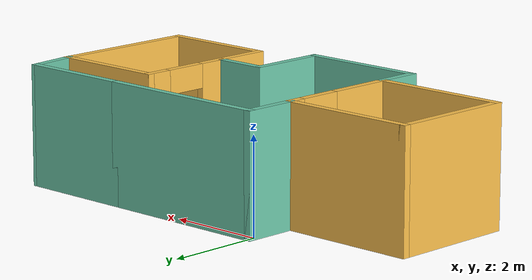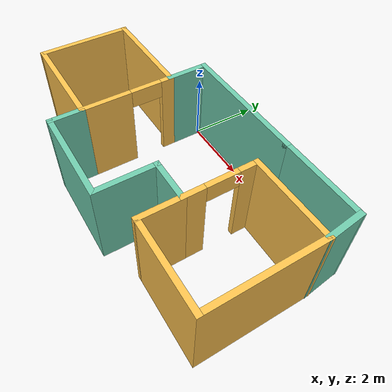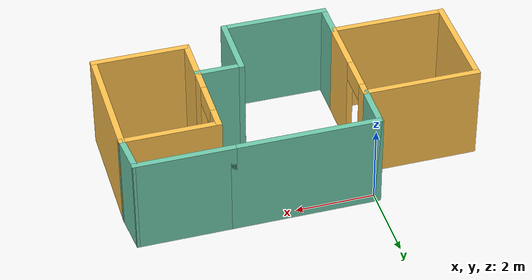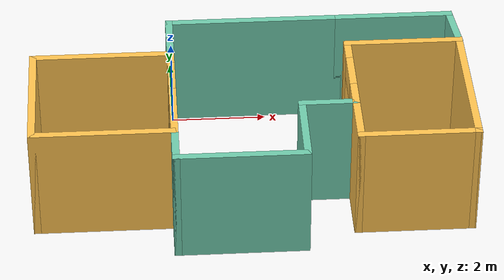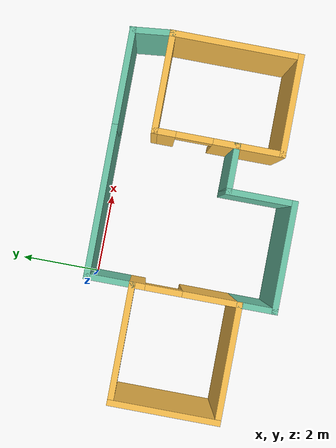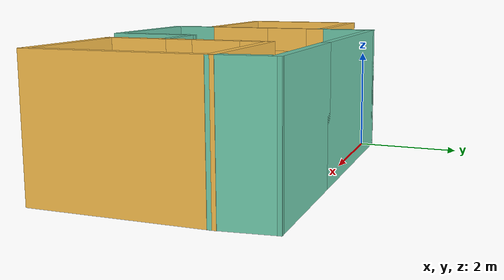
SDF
<?xml version='1.0'?>
<sdf version='1.7'>
  <model name='Building'>
    <pose>1.57372 -2.13128 0 0 -0 0</pose>
    <link name='Wall_0'>
      <collision name='Wall_0_Collision'>
        <geometry>
          <box>
            <size>2.75 0.15 2.5</size>
          </box>
        </geometry>
        <pose>0 0 1.25 0 -0 0</pose>
      </collision>
      <visual name='Wall_0_Visual'>
        <pose>0 0 1.25 0 -0 0</pose>
        <geometry>
          <box>
            <size>2.75 0.15 2.5</size>
          </box>
        </geometry>
        <material>
          <script>
            <uri>file://media/materials/scripts/gazebo.material</uri>
            <name>Gazebo/Grey</name>
          </script>
          <ambient>1 0.764706 0.305882 1</ambient>
        </material>
        <meta>
          <layer>0</layer>
        </meta>
      </visual>
      <pose>-4.45372 -0.12872 0 0 -0 -1.5708</pose>
    </link>
    <link name='Wall_1'>
      <collision name='Wall_1_Collision'>
        <geometry>
          <box>
            <size>3 0.15 2.5</size>
          </box>
        </geometry>
        <pose>0 0 1.25 0 -0 0</pose>
      </collision>
      <visual name='Wall_1_Visual'>
        <pose>0 0 1.25 0 -0 0</pose>
        <geometry>
          <box>
            <size>3 0.15 2.5</size>
          </box>
        </geometry>
        <material>
          <script>
            <uri>file://media/materials/scripts/gazebo.material</uri>
            <name>Gazebo/Grey</name>
          </script>
          <ambient>1 0.764706 0.305882 1</ambient>
        </material>
        <meta>
          <layer>0</layer>
        </meta>
      </visual>
      <pose>-3.02872 -1.42872 0 0 -0 0</pose>
    </link>
    <link name='Wall_10'>
      <pose>2.09628 0.32128 0 0 -0 -1.5708</pose>
      <visual name='Wall_10_Visual_0'>
        <pose>-0.780597 0 1.25 0 -0 0</pose>
        <geometry>
          <box>
            <size>0.588806 0.15 2.5</size>
          </box>
        </geometry>
        <material>
          <script>
            <uri>file://media/materials/scripts/gazebo.material</uri>
            <name>Gazebo/Grey</name>
          </script>
          <ambient>1 0.764706 0.305882 1</ambient>
        </material>
        <meta>
          <layer>0</layer>
        </meta>
      </visual>
      <collision name='Wall_10_Collision_0'>
        <geometry>
          <box>
            <size>0.588806 0.15 2.5</size>
          </box>
        </geometry>
        <pose>-0.780597 0 1.25 0 -0 0</pose>
      </collision>
      <visual name='Wall_10_Visual_1'>
        <pose>0.744403 0 1.25 0 -0 0</pose>
        <geometry>
          <box>
            <size>0.661194 0.15 2.5</size>
          </box>
        </geometry>
        <material>
          <script>
            <uri>file://media/materials/scripts/gazebo.material</uri>
            <name>Gazebo/Grey</name>
          </script>
          <ambient>1 0.764706 0.305882 1</ambient>
        </material>
        <meta>
          <layer>0</layer>
        </meta>
      </visual>
      <collision name='Wall_10_Collision_1'>
        <geometry>
          <box>
            <size>0.661194 0.15 2.5</size>
          </box>
        </geometry>
        <pose>0.744403 0 1.25 0 -0 0</pose>
      </collision>
      <visual name='Wall_10_Visual_2'>
        <pose>-0.036194 0 2.25 0 -0 0</pose>
        <geometry>
          <box>
            <size>0.9 0.15 0.5</size>
          </box>
        </geometry>
        <material>
          <script>
            <uri>file://media/materials/scripts/gazebo.material</uri>
            <name>Gazebo/Grey</name>
          </script>
          <ambient>1 0.764706 0.305882 1</ambient>
        </material>
        <meta>
          <layer>0</layer>
        </meta>
      </visual>
      <collision name='Wall_10_Collision_2'>
        <geometry>
          <box>
            <size>0.9 0.15 0.5</size>
          </box>
        </geometry>
        <pose>-0.036194 0 2.25 0 -0 0</pose>
      </collision>
    </link>
    <link name='Wall_12'>
      <collision name='Wall_12_Collision'>
        <geometry>
          <box>
            <size>3 0.15 2.5</size>
          </box>
        </geometry>
        <pose>0 0 1.25 0 -0 0</pose>
      </collision>
      <visual name='Wall_12_Visual'>
        <pose>0 0 1.25 0 -0 0</pose>
        <geometry>
          <box>
            <size>3 0.15 2.5</size>
          </box>
        </geometry>
        <material>
          <script>
            <uri>file://media/materials/scripts/gazebo.material</uri>
            <name>Gazebo/Grey</name>
          </script>
          <ambient>1 0.764706 0.305882 1</ambient>
        </material>
        <meta>
          <layer>0</layer>
        </meta>
      </visual>
      <pose>-3.02872 1.17128 0 0 -0 0</pose>
    </link>
    <link name='Wall_13'>
      <pose>-1.60372 -0.12872 0 0 -0 -1.5708</pose>
      <visual name='Wall_13_Visual_0'>
        <pose>-1.18183 0 1.25 0 -0 0</pose>
        <geometry>
          <box>
            <size>0.386336 0.15 2.5</size>
          </box>
        </geometry>
        <material>
          <script>
            <uri>file://media/materials/scripts/gazebo.material</uri>
            <name>Gazebo/Grey</name>
          </script>
          <ambient>1 0.764706 0.305882 1</ambient>
        </material>
        <meta>
          <layer>0</layer>
        </meta>
      </visual>
      <collision name='Wall_13_Collision_0'>
        <geometry>
          <box>
            <size>0.386336 0.15 2.5</size>
          </box>
        </geometry>
        <pose>-1.18183 0 1.25 0 -0 0</pose>
      </collision>
      <visual name='Wall_13_Visual_1'>
        <pose>0.643168 0 1.25 0 -0 0</pose>
        <geometry>
          <box>
            <size>1.46366 0.15 2.5</size>
          </box>
        </geometry>
        <material>
          <script>
            <uri>file://media/materials/scripts/gazebo.material</uri>
            <name>Gazebo/Grey</name>
          </script>
          <ambient>1 0.764706 0.305882 1</ambient>
        </material>
        <meta>
          <layer>0</layer>
        </meta>
      </visual>
      <collision name='Wall_13_Collision_1'>
        <geometry>
          <box>
            <size>1.46366 0.15 2.5</size>
          </box>
        </geometry>
        <pose>0.643168 0 1.25 0 -0 0</pose>
      </collision>
      <visual name='Wall_13_Visual_2'>
        <pose>-0.538664 0 2.25 0 -0 0</pose>
        <geometry>
          <box>
            <size>0.9 0.15 0.5</size>
          </box>
        </geometry>
        <material>
          <script>
            <uri>file://media/materials/scripts/gazebo.material</uri>
            <name>Gazebo/Grey</name>
          </script>
          <ambient>1 0.764706 0.305882 1</ambient>
        </material>
        <meta>
          <layer>0</layer>
        </meta>
      </visual>
      <collision name='Wall_13_Collision_2'>
        <geometry>
          <box>
            <size>0.9 0.15 0.5</size>
          </box>
        </geometry>
        <pose>-0.538664 0 2.25 0 -0 0</pose>
      </collision>
    </link>
    <link name='Wall_16'>
      <collision name='Wall_16_Collision'>
        <geometry>
          <box>
            <size>1.25 0.15 2.5</size>
          </box>
        </geometry>
        <pose>0 0 1.25 0 -0 0</pose>
      </collision>
      <visual name='Wall_16_Visual'>
        <pose>0 0 1.25 0 -0 0</pose>
        <geometry>
          <box>
            <size>1.25 0.15 2.5</size>
          </box>
        </geometry>
        <material>
          <script>
            <uri>file://media/materials/scripts/gazebo.material</uri>
            <name>Gazebo/Grey</name>
          </script>
          <ambient>0.435294 0.796078 0.67451 1</ambient>
        </material>
        <meta>
          <layer>0</layer>
        </meta>
      </visual>
      <pose>-1.60372 1.72128 0 0 -0 1.5708</pose>
    </link>
    <link name='Wall_17'>
      <collision name='Wall_17_Collision'>
        <geometry>
          <box>
            <size>3.75 0.15 2.5</size>
          </box>
        </geometry>
        <pose>0 0 1.25 0 -0 0</pose>
      </collision>
      <visual name='Wall_17_Visual'>
        <pose>0 0 1.25 0 -0 0</pose>
        <geometry>
          <box>
            <size>3.75 0.15 2.5</size>
          </box>
        </geometry>
        <material>
          <script>
            <uri>file://media/materials/scripts/gazebo.material</uri>
            <name>Gazebo/Grey</name>
          </script>
          <ambient>0.435294 0.796078 0.67451 1</ambient>
        </material>
        <meta>
          <layer>0</layer>
        </meta>
      </visual>
      <pose>0.196281 2.27128 0 0 -0 0</pose>
    </link>
    <link name='Wall_19'>
      <collision name='Wall_19_Collision'>
        <geometry>
          <box>
            <size>2.5 0.15 2.5</size>
          </box>
        </geometry>
        <pose>0 0 1.25 0 -0 0</pose>
      </collision>
      <visual name='Wall_19_Visual'>
        <pose>0 0 1.25 0 -0 0</pose>
        <geometry>
          <box>
            <size>2.5 0.15 2.5</size>
          </box>
        </geometry>
        <material>
          <script>
            <uri>file://media/materials/scripts/gazebo.material</uri>
            <name>Gazebo/Grey</name>
          </script>
          <ambient>0.435294 0.796078 0.67451 1</ambient>
        </material>
        <meta>
          <layer>0</layer>
        </meta>
      </visual>
      <pose>3.17128 2.27128 0 0 -0 0</pose>
    </link>
    <link name='Wall_2'>
      <collision name='Wall_2_Collision'>
        <geometry>
          <box>
            <size>1 0.15 2.5</size>
          </box>
        </geometry>
        <pose>0 0 1.25 0 -0 0</pose>
      </collision>
      <visual name='Wall_2_Visual'>
        <pose>0 0 1.25 0 -0 0</pose>
        <geometry>
          <box>
            <size>1 0.15 2.5</size>
          </box>
        </geometry>
        <material>
          <script>
            <uri>file://media/materials/scripts/gazebo.material</uri>
            <name>Gazebo/Grey</name>
          </script>
          <ambient>0.435294 0.796078 0.67451 1</ambient>
        </material>
        <meta>
          <layer>0</layer>
        </meta>
      </visual>
      <pose>-1.60372 -1.85372 0 0 -0 -1.5708</pose>
    </link>
    <link name='Wall_20'>
      <collision name='Wall_20_Collision'>
        <geometry>
          <box>
            <size>1.10525 0.15 2.5</size>
          </box>
        </geometry>
        <pose>0 0 1.25 0 -0 0</pose>
      </collision>
      <visual name='Wall_20_Visual'>
        <pose>0 0 1.25 0 -0 0</pose>
        <geometry>
          <box>
            <size>1.10525 0.15 2.5</size>
          </box>
        </geometry>
        <material>
          <script>
            <uri>file://media/materials/scripts/gazebo.material</uri>
            <name>Gazebo/Grey</name>
          </script>
          <ambient>0.435294 0.796078 0.67451 1</ambient>
        </material>
        <meta>
          <layer>0</layer>
        </meta>
      </visual>
      <pose>4.39628 1.79628 0 0 -0 -1.46592</pose>
    </link>
    <link name='Wall_3'>
      <collision name='Wall_3_Collision'>
        <geometry>
          <box>
            <size>2.75 0.15 2.5</size>
          </box>
        </geometry>
        <pose>0 0 1.25 0 -0 0</pose>
      </collision>
      <visual name='Wall_3_Visual'>
        <pose>0 0 1.25 0 -0 0</pose>
        <geometry>
          <box>
            <size>2.75 0.15 2.5</size>
          </box>
        </geometry>
        <material>
          <script>
            <uri>file://media/materials/scripts/gazebo.material</uri>
            <name>Gazebo/Grey</name>
          </script>
          <ambient>0.435294 0.796078 0.67451 1</ambient>
        </material>
        <meta>
          <layer>0</layer>
        </meta>
      </visual>
      <pose>-0.303719 -2.27872 0 0 -0 0</pose>
    </link>
    <link name='Wall_4'>
      <collision name='Wall_4_Collision'>
        <geometry>
          <box>
            <size>1.75 0.15 2.5</size>
          </box>
        </geometry>
        <pose>0 0 1.25 0 -0 0</pose>
      </collision>
      <visual name='Wall_4_Visual'>
        <pose>0 0 1.25 0 -0 0</pose>
        <geometry>
          <box>
            <size>1.75 0.15 2.5</size>
          </box>
        </geometry>
        <material>
          <script>
            <uri>file://media/materials/scripts/gazebo.material</uri>
            <name>Gazebo/Grey</name>
          </script>
          <ambient>0.435294 0.796078 0.67451 1</ambient>
        </material>
        <meta>
          <layer>0</layer>
        </meta>
      </visual>
      <pose>0.996281 -1.47872 0 0 -0 1.5708</pose>
    </link>
    <link name='Wall_5'>
      <collision name='Wall_5_Collision'>
        <geometry>
          <box>
            <size>1.25 0.15 2.5</size>
          </box>
        </geometry>
        <pose>0 0 1.25 0 -0 0</pose>
      </collision>
      <visual name='Wall_5_Visual'>
        <pose>0 0 1.25 0 -0 0</pose>
        <geometry>
          <box>
            <size>1.25 0.15 2.5</size>
          </box>
        </geometry>
        <material>
          <script>
            <uri>file://media/materials/scripts/gazebo.material</uri>
            <name>Gazebo/Grey</name>
          </script>
          <ambient>0.435294 0.796078 0.67451 1</ambient>
        </material>
        <meta>
          <layer>0</layer>
        </meta>
      </visual>
      <pose>1.54628 -0.67872 0 0 -0 0</pose>
    </link>
    <link name='Wall_6'>
      <collision name='Wall_6_Collision'>
        <geometry>
          <box>
            <size>1.25 0.15 2.5</size>
          </box>
        </geometry>
        <pose>0 0 1.25 0 -0 0</pose>
      </collision>
      <visual name='Wall_6_Visual'>
        <pose>0 0 1.25 0 -0 0</pose>
        <geometry>
          <box>
            <size>1.25 0.15 2.5</size>
          </box>
        </geometry>
        <material>
          <script>
            <uri>file://media/materials/scripts/gazebo.material</uri>
            <name>Gazebo/Grey</name>
          </script>
          <ambient>1 0.764706 0.305882 1</ambient>
        </material>
        <meta>
          <layer>0</layer>
        </meta>
      </visual>
      <pose>2.09628 -1.22872 0 0 -0 -1.5708</pose>
    </link>
    <link name='Wall_7'>
      <collision name='Wall_7_Collision'>
        <geometry>
          <box>
            <size>2.5 0.15 2.5</size>
          </box>
        </geometry>
        <pose>0 0 1.25 0 -0 0</pose>
      </collision>
      <visual name='Wall_7_Visual'>
        <pose>0 0 1.25 0 -0 0</pose>
        <geometry>
          <box>
            <size>2.5 0.15 2.5</size>
          </box>
        </geometry>
        <material>
          <script>
            <uri>file://media/materials/scripts/gazebo.material</uri>
            <name>Gazebo/Grey</name>
          </script>
          <ambient>1 0.764706 0.305882 1</ambient>
        </material>
        <meta>
          <layer>0</layer>
        </meta>
      </visual>
      <pose>3.27128 -1.77872 0 0 -0 0</pose>
    </link>
    <link name='Wall_8'>
      <collision name='Wall_8_Collision'>
        <geometry>
          <box>
            <size>3.25 0.15 2.5</size>
          </box>
        </geometry>
        <pose>0 0 1.25 0 -0 0</pose>
      </collision>
      <visual name='Wall_8_Visual'>
        <pose>0 0 1.25 0 -0 0</pose>
        <geometry>
          <box>
            <size>3.25 0.15 2.5</size>
          </box>
        </geometry>
        <material>
          <script>
            <uri>file://media/materials/scripts/gazebo.material</uri>
            <name>Gazebo/Grey</name>
          </script>
          <ambient>1 0.764706 0.305882 1</ambient>
        </material>
        <meta>
          <layer>0</layer>
        </meta>
      </visual>
      <pose>4.44628 -0.228719 0 0 -0 1.5708</pose>
    </link>
    <link name='Wall_9'>
      <collision name='Wall_9_Collision'>
        <geometry>
          <box>
            <size>2.5 0.15 2.5</size>
          </box>
        </geometry>
        <pose>0 0 1.25 0 -0 0</pose>
      </collision>
      <visual name='Wall_9_Visual'>
        <pose>0 0 1.25 0 -0 0</pose>
        <geometry>
          <box>
            <size>2.5 0.15 2.5</size>
          </box>
        </geometry>
        <material>
          <script>
            <uri>file://media/materials/scripts/gazebo.material</uri>
            <name>Gazebo/Grey</name>
          </script>
          <ambient>1 0.764706 0.305882 1</ambient>
        </material>
        <meta>
          <layer>0</layer>
        </meta>
      </visual>
      <pose>3.27128 1.32128 0 0 -0 3.14159</pose>
    </link>
    <static>1</static>
  </model>
</sdf>
